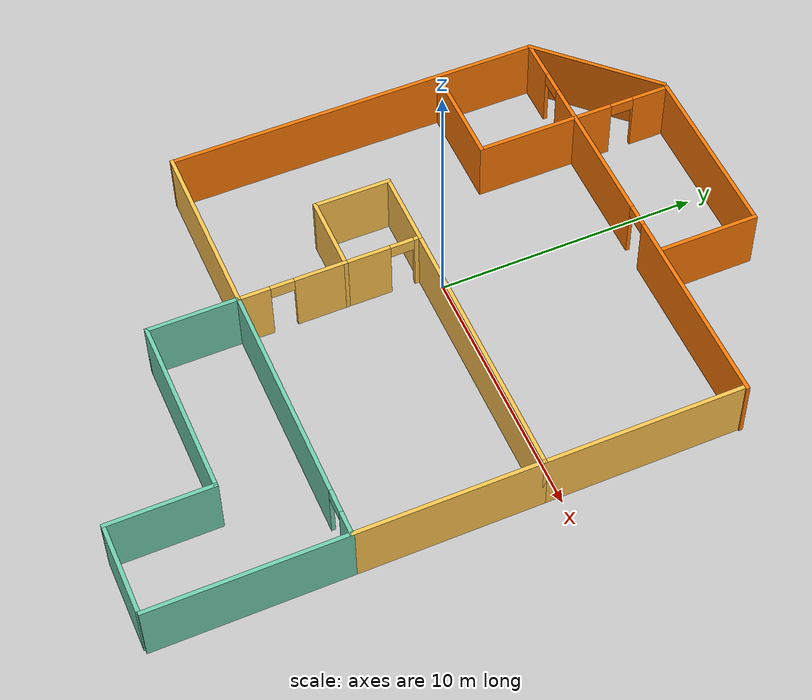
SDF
<?xml version='1.0'?>
<sdf version='1.6'>
  <model name='building'>
    <pose frame=''>1.11947 -1.97796 0 0 -0 0</pose>
    <link name='Wall_0'>
      <collision name='Wall_0_Collision'>
        <geometry>
          <box>
            <size>3 0.15 2.5</size>
          </box>
        </geometry>
        <pose frame=''>0 0 1.25 0 -0 0</pose>
      </collision>
      <visual name='Wall_0_Visual'>
        <pose frame=''>0 0 1.25 0 -0 0</pose>
        <geometry>
          <box>
            <size>3 0.15 2.5</size>
          </box>
        </geometry>
        <material>
          <script>
            <uri>file://media/materials/scripts/gazebo.material</uri>
            <name>Gazebo/Grey</name>
          </script>
          <ambient>1 0.764706 0.305882 1</ambient>
        </material>
        <meta>
          <layer>0</layer>
        </meta>
      </visual>
      <pose frame=''>-3.18447 1.36796 0 0 -0 0</pose>
    </link>
    <link name='Wall_1'>
      <pose frame=''>-1.75947 -0.057044 0 0 0 -1.5708</pose>
      <visual name='Wall_1_Visual_0'>
        <pose frame=''>-1.33969 0 1.25 0 -0 0</pose>
        <geometry>
          <box>
            <size>0.320624 0.15 2.5</size>
          </box>
        </geometry>
        <material>
          <script>
            <uri>file://media/materials/scripts/gazebo.material</uri>
            <name>Gazebo/Grey</name>
          </script>
          <ambient>1 0.764706 0.305882 1</ambient>
        </material>
        <meta>
          <layer>0</layer>
        </meta>
      </visual>
      <collision name='Wall_1_Collision_0'>
        <geometry>
          <box>
            <size>0.320624 0.15 2.5</size>
          </box>
        </geometry>
        <pose frame=''>-1.33969 0 1.25 0 -0 0</pose>
      </collision>
      <visual name='Wall_1_Visual_1'>
        <pose frame=''>0.610312 0 1.25 0 -0 0</pose>
        <geometry>
          <box>
            <size>1.77938 0.15 2.5</size>
          </box>
        </geometry>
        <material>
          <script>
            <uri>file://media/materials/scripts/gazebo.material</uri>
            <name>Gazebo/Grey</name>
          </script>
          <ambient>1 0.764706 0.305882 1</ambient>
        </material>
        <meta>
          <layer>0</layer>
        </meta>
      </visual>
      <collision name='Wall_1_Collision_1'>
        <geometry>
          <box>
            <size>1.77938 0.15 2.5</size>
          </box>
        </geometry>
        <pose frame=''>0.610312 0 1.25 0 -0 0</pose>
      </collision>
      <visual name='Wall_1_Visual_2'>
        <pose frame=''>-0.729376 0 2.25 0 -0 0</pose>
        <geometry>
          <box>
            <size>0.9 0.15 0.5</size>
          </box>
        </geometry>
        <material>
          <script>
            <uri>file://media/materials/scripts/gazebo.material</uri>
            <name>Gazebo/Grey</name>
          </script>
          <ambient>1 0.764706 0.305882 1</ambient>
        </material>
        <meta>
          <layer>0</layer>
        </meta>
      </visual>
      <collision name='Wall_1_Collision_2'>
        <geometry>
          <box>
            <size>0.9 0.15 0.5</size>
          </box>
        </geometry>
        <pose frame=''>-0.729376 0 2.25 0 -0 0</pose>
      </collision>
    </link>
    <link name='Wall_2'>
      <collision name='Wall_2_Collision'>
        <geometry>
          <box>
            <size>3 0.15 2.5</size>
          </box>
        </geometry>
        <pose frame=''>0 0 1.25 0 -0 0</pose>
      </collision>
      <visual name='Wall_2_Visual'>
        <pose frame=''>0 0 1.25 0 -0 0</pose>
        <geometry>
          <box>
            <size>3 0.15 2.5</size>
          </box>
        </geometry>
        <material>
          <script>
            <uri>file://media/materials/scripts/gazebo.material</uri>
            <name>Gazebo/Grey</name>
          </script>
          <ambient>1 0.764706 0.305882 1</ambient>
        </material>
        <meta>
          <layer>0</layer>
        </meta>
      </visual>
      <pose frame=''>-3.18447 -1.48204 0 0 -0 3.14159</pose>
    </link>
    <link name='Wall_3'>
      <collision name='Wall_3_Collision'>
        <geometry>
          <box>
            <size>3 0.15 2.5</size>
          </box>
        </geometry>
        <pose frame=''>0 0 1.25 0 -0 0</pose>
      </collision>
      <visual name='Wall_3_Visual'>
        <pose frame=''>0 0 1.25 0 -0 0</pose>
        <geometry>
          <box>
            <size>3 0.15 2.5</size>
          </box>
        </geometry>
        <material>
          <script>
            <uri>file://media/materials/scripts/gazebo.material</uri>
            <name>Gazebo/Grey</name>
          </script>
          <ambient>1 0.764706 0.305882 1</ambient>
        </material>
        <meta>
          <layer>0</layer>
        </meta>
      </visual>
      <pose frame=''>-4.60947 -0.057044 0 0 -0 1.5708</pose>
    </link>
    <link name='Wall_34'>
      <collision name='Wall_34_Collision'>
        <geometry>
          <box>
            <size>3.5 0.15 2.5</size>
          </box>
        </geometry>
        <pose frame=''>0 0 1.25 0 -0 0</pose>
      </collision>
      <visual name='Wall_34_Visual'>
        <pose frame=''>0 0 1.25 0 -0 0</pose>
        <geometry>
          <box>
            <size>3.5 0.15 2.5</size>
          </box>
        </geometry>
        <material>
          <script>
            <uri>file://media/materials/scripts/gazebo.material</uri>
            <name>Gazebo/Grey</name>
          </script>
          <ambient>0.435294 0.796078 0.67451 1</ambient>
        </material>
        <meta>
          <layer>0</layer>
        </meta>
      </visual>
      <pose frame=''>-1.75947 -7.15704 0 0 0 -1.5708</pose>
    </link>
    <link name='Wall_35'>
      <collision name='Wall_35_Collision'>
        <geometry>
          <box>
            <size>7 0.15 2.5</size>
          </box>
        </geometry>
        <pose frame=''>0 0 1.25 0 -0 0</pose>
      </collision>
      <visual name='Wall_35_Visual'>
        <pose frame=''>0 0 1.25 0 -0 0</pose>
        <geometry>
          <box>
            <size>7 0.15 2.5</size>
          </box>
        </geometry>
        <material>
          <script>
            <uri>file://media/materials/scripts/gazebo.material</uri>
            <name>Gazebo/Grey</name>
          </script>
          <ambient>0.435294 0.796078 0.67451 1</ambient>
        </material>
        <meta>
          <layer>0</layer>
        </meta>
      </visual>
      <pose frame=''>1.66553 -8.83204 0 0 -0 0</pose>
    </link>
    <link name='Wall_36'>
      <collision name='Wall_36_Collision'>
        <geometry>
          <box>
            <size>4 0.15 2.5</size>
          </box>
        </geometry>
        <pose frame=''>0 0 1.25 0 -0 0</pose>
      </collision>
      <visual name='Wall_36_Visual'>
        <pose frame=''>0 0 1.25 0 -0 0</pose>
        <geometry>
          <box>
            <size>4 0.15 2.5</size>
          </box>
        </geometry>
        <material>
          <script>
            <uri>file://media/materials/scripts/gazebo.material</uri>
            <name>Gazebo/Grey</name>
          </script>
          <ambient>0.435294 0.796078 0.67451 1</ambient>
        </material>
        <meta>
          <layer>0</layer>
        </meta>
      </visual>
      <pose frame=''>5.09053 -10.757 0 0 0 -1.5708</pose>
    </link>
    <link name='Wall_37'>
      <collision name='Wall_37_Collision'>
        <geometry>
          <box>
            <size>3.5 0.15 2.5</size>
          </box>
        </geometry>
        <pose frame=''>0 0 1.25 0 -0 0</pose>
      </collision>
      <visual name='Wall_37_Visual'>
        <pose frame=''>0 0 1.25 0 -0 0</pose>
        <geometry>
          <box>
            <size>3.5 0.15 2.5</size>
          </box>
        </geometry>
        <material>
          <script>
            <uri>file://media/materials/scripts/gazebo.material</uri>
            <name>Gazebo/Grey</name>
          </script>
          <ambient>0.435294 0.796078 0.67451 1</ambient>
        </material>
        <meta>
          <layer>0</layer>
        </meta>
      </visual>
      <pose frame=''>6.76553 -12.682 0 0 -0 0</pose>
    </link>
    <link name='Wall_40'>
      <collision name='Wall_40_Collision'>
        <geometry>
          <box>
            <size>7.3 0.15 2.5</size>
          </box>
        </geometry>
        <pose frame=''>0 0 1.25 0 -0 0</pose>
      </collision>
      <visual name='Wall_40_Visual'>
        <pose frame=''>0 0 1.25 0 -0 0</pose>
        <geometry>
          <box>
            <size>7.3 0.15 2.5</size>
          </box>
        </geometry>
        <material>
          <script>
            <uri>file://media/materials/scripts/gazebo.material</uri>
            <name>Gazebo/Grey</name>
          </script>
          <ambient>0.435294 0.796078 0.67451 1</ambient>
        </material>
        <meta>
          <layer>0</layer>
        </meta>
      </visual>
      <pose frame=''>8.59053 -9.05704 0 0 0 -1.5708</pose>
    </link>
    <link name='Wall_42'>
      <collision name='Wall_42_Collision'>
        <geometry>
          <box>
            <size>7 0.15 2.5</size>
          </box>
        </geometry>
        <pose frame=''>0 0 1.25 0 -0 0</pose>
      </collision>
      <visual name='Wall_42_Visual'>
        <pose frame=''>0 0 1.25 0 -0 0</pose>
        <geometry>
          <box>
            <size>7 0.15 2.5</size>
          </box>
        </geometry>
        <material>
          <script>
            <uri>file://media/materials/scripts/gazebo.material</uri>
            <name>Gazebo/Grey</name>
          </script>
          <ambient>1 0.764706 0.305882 1</ambient>
        </material>
        <meta>
          <layer>0</layer>
        </meta>
      </visual>
      <pose frame=''>-5.18447 -5.48204 0 0 -0 3.14159</pose>
    </link>
    <link name='Wall_43'>
      <collision name='Wall_43_Collision'>
        <geometry>
          <box>
            <size>14.5 0.15 2.5</size>
          </box>
        </geometry>
        <pose frame=''>0 0 1.25 0 -0 0</pose>
      </collision>
      <visual name='Wall_43_Visual'>
        <pose frame=''>0 0 1.25 0 -0 0</pose>
        <geometry>
          <box>
            <size>14.5 0.15 2.5</size>
          </box>
        </geometry>
        <material>
          <script>
            <uri>file://media/materials/scripts/gazebo.material</uri>
            <name>Gazebo/Grey</name>
          </script>
          <ambient>0.996078 0.47451 0.0196078 1</ambient>
        </material>
        <meta>
          <layer>0</layer>
        </meta>
      </visual>
      <pose frame=''>-8.60947 1.69296 0 0 -0 1.5708</pose>
    </link>
    <link name='Wall_44'>
      <pose frame=''>0.015533 8.86796 0 0 -0 0</pose>
      <visual name='Wall_44_Visual_0'>
        <pose frame=''>-7.87921 0 1.25 0 -0 0</pose>
        <geometry>
          <box>
            <size>1.64157 0.15 2.5</size>
          </box>
        </geometry>
        <material>
          <script>
            <uri>file://media/materials/scripts/gazebo.material</uri>
            <name>Gazebo/Grey</name>
          </script>
          <ambient>0.996078 0.47451 0.0196078 1</ambient>
        </material>
        <meta>
          <layer>0</layer>
        </meta>
      </visual>
      <collision name='Wall_44_Collision_0'>
        <geometry>
          <box>
            <size>1.64157 0.15 2.5</size>
          </box>
        </geometry>
        <pose frame=''>-7.87921 0 1.25 0 -0 0</pose>
      </collision>
      <visual name='Wall_44_Visual_1'>
        <pose frame=''>-3.07883 0 1.25 0 -0 0</pose>
        <geometry>
          <box>
            <size>6.15918 0.15 2.5</size>
          </box>
        </geometry>
        <material>
          <script>
            <uri>file://media/materials/scripts/gazebo.material</uri>
            <name>Gazebo/Grey</name>
          </script>
          <ambient>0.996078 0.47451 0.0196078 1</ambient>
        </material>
        <meta>
          <layer>0</layer>
        </meta>
      </visual>
      <collision name='Wall_44_Collision_1'>
        <geometry>
          <box>
            <size>6.15918 0.15 2.5</size>
          </box>
        </geometry>
        <pose frame=''>-3.07883 0 1.25 0 -0 0</pose>
      </collision>
      <visual name='Wall_44_Visual_2'>
        <pose frame=''>4.80038 0 1.25 0 -0 0</pose>
        <geometry>
          <box>
            <size>7.79924 0.15 2.5</size>
          </box>
        </geometry>
        <material>
          <script>
            <uri>file://media/materials/scripts/gazebo.material</uri>
            <name>Gazebo/Grey</name>
          </script>
          <ambient>0.996078 0.47451 0.0196078 1</ambient>
        </material>
        <meta>
          <layer>0</layer>
        </meta>
      </visual>
      <collision name='Wall_44_Collision_2'>
        <geometry>
          <box>
            <size>7.79924 0.15 2.5</size>
          </box>
        </geometry>
        <pose frame=''>4.80038 0 1.25 0 -0 0</pose>
      </collision>
      <visual name='Wall_44_Visual_3'>
        <pose frame=''>-6.60843 0 2.25 0 -0 0</pose>
        <geometry>
          <box>
            <size>0.9 0.15 0.5</size>
          </box>
        </geometry>
        <material>
          <script>
            <uri>file://media/materials/scripts/gazebo.material</uri>
            <name>Gazebo/Grey</name>
          </script>
          <ambient>0.996078 0.47451 0.0196078 1</ambient>
        </material>
        <meta>
          <layer>0</layer>
        </meta>
      </visual>
      <collision name='Wall_44_Collision_3'>
        <geometry>
          <box>
            <size>0.9 0.15 0.5</size>
          </box>
        </geometry>
        <pose frame=''>-6.60843 0 2.25 0 -0 0</pose>
      </collision>
      <visual name='Wall_44_Visual_4'>
        <pose frame=''>0.450758 0 2.25 0 -0 0</pose>
        <geometry>
          <box>
            <size>0.9 0.15 0.5</size>
          </box>
        </geometry>
        <material>
          <script>
            <uri>file://media/materials/scripts/gazebo.material</uri>
            <name>Gazebo/Grey</name>
          </script>
          <ambient>0.996078 0.47451 0.0196078 1</ambient>
        </material>
        <meta>
          <layer>0</layer>
        </meta>
      </visual>
      <collision name='Wall_44_Collision_4'>
        <geometry>
          <box>
            <size>0.9 0.15 0.5</size>
          </box>
        </geometry>
        <pose frame=''>0.450758 0 2.25 0 -0 0</pose>
      </collision>
    </link>
    <link name='Wall_46'>
      <collision name='Wall_46_Collision'>
        <geometry>
          <box>
            <size>7.5 0.15 2.5</size>
          </box>
        </geometry>
        <pose frame=''>0 0 1.25 0 -0 0</pose>
      </collision>
      <visual name='Wall_46_Visual'>
        <pose frame=''>0 0 1.25 0 -0 0</pose>
        <geometry>
          <box>
            <size>7.5 0.15 2.5</size>
          </box>
        </geometry>
        <material>
          <script>
            <uri>file://media/materials/scripts/gazebo.material</uri>
            <name>Gazebo/Grey</name>
          </script>
          <ambient>1 0.764706 0.305882 1</ambient>
        </material>
        <meta>
          <layer>0</layer>
        </meta>
      </visual>
      <pose frame=''>8.59053 5.04296 0 0 -0 1.5708</pose>
    </link>
    <link name='Wall_49'>
      <collision name='Wall_49_Collision'>
        <geometry>
          <box>
            <size>4 0.15 2.5</size>
          </box>
        </geometry>
        <pose frame=''>0 0 1.25 0 -0 0</pose>
      </collision>
      <visual name='Wall_49_Visual'>
        <pose frame=''>0 0 1.25 0 -0 0</pose>
        <geometry>
          <box>
            <size>4 0.15 2.5</size>
          </box>
        </geometry>
        <material>
          <script>
            <uri>file://media/materials/scripts/gazebo.material</uri>
            <name>Gazebo/Grey</name>
          </script>
          <ambient>0.996078 0.47451 0.0196078 1</ambient>
        </material>
        <meta>
          <layer>0</layer>
        </meta>
      </visual>
      <pose frame=''>-6.5776 5.06626 0 0 -0 0</pose>
    </link>
    <link name='Wall_5'>
      <collision name='Wall_5_Collision'>
        <geometry>
          <box>
            <size>10.5 0.15 2.5</size>
          </box>
        </geometry>
        <pose frame=''>0 0 1.25 0 -0 0</pose>
      </collision>
      <visual name='Wall_5_Visual'>
        <pose frame=''>0 0 1.25 0 -0 0</pose>
        <geometry>
          <box>
            <size>10.5 0.15 2.5</size>
          </box>
        </geometry>
        <material>
          <script>
            <uri>file://media/materials/scripts/gazebo.material</uri>
            <name>Gazebo/Grey</name>
          </script>
          <ambient>1 0.764706 0.305882 1</ambient>
        </material>
        <meta>
          <layer>0</layer>
        </meta>
      </visual>
      <pose frame=''>3.41553 1.36796 0 0 -0 0</pose>
    </link>
    <link name='Wall_50'>
      <pose frame=''>-4.6526 8.86626 0 0 -0 1.5708</pose>
      <visual name='Wall_50_Visual_0'>
        <pose frame=''>-1.2023 0 1.25 0 -0 0</pose>
        <geometry>
          <box>
            <size>5.34539 0.15 2.5</size>
          </box>
        </geometry>
        <material>
          <script>
            <uri>file://media/materials/scripts/gazebo.material</uri>
            <name>Gazebo/Grey</name>
          </script>
          <ambient>0.996078 0.47451 0.0196078 1</ambient>
        </material>
        <meta>
          <layer>0</layer>
        </meta>
      </visual>
      <collision name='Wall_50_Collision_0'>
        <geometry>
          <box>
            <size>5.34539 0.15 2.5</size>
          </box>
        </geometry>
        <pose frame=''>-1.2023 0 1.25 0 -0 0</pose>
      </collision>
      <visual name='Wall_50_Visual_1'>
        <pose frame=''>3.1227 0 1.25 0 -0 0</pose>
        <geometry>
          <box>
            <size>1.50461 0.15 2.5</size>
          </box>
        </geometry>
        <material>
          <script>
            <uri>file://media/materials/scripts/gazebo.material</uri>
            <name>Gazebo/Grey</name>
          </script>
          <ambient>0.996078 0.47451 0.0196078 1</ambient>
        </material>
        <meta>
          <layer>0</layer>
        </meta>
      </visual>
      <collision name='Wall_50_Collision_1'>
        <geometry>
          <box>
            <size>1.50461 0.15 2.5</size>
          </box>
        </geometry>
        <pose frame=''>3.1227 0 1.25 0 -0 0</pose>
      </collision>
      <visual name='Wall_50_Visual_2'>
        <pose frame=''>1.92039 0 2.25 0 -0 0</pose>
        <geometry>
          <box>
            <size>0.9 0.15 0.5</size>
          </box>
        </geometry>
        <material>
          <script>
            <uri>file://media/materials/scripts/gazebo.material</uri>
            <name>Gazebo/Grey</name>
          </script>
          <ambient>0.996078 0.47451 0.0196078 1</ambient>
        </material>
        <meta>
          <layer>0</layer>
        </meta>
      </visual>
      <collision name='Wall_50_Collision_2'>
        <geometry>
          <box>
            <size>0.9 0.15 0.5</size>
          </box>
        </geometry>
        <pose frame=''>1.92039 0 2.25 0 -0 0</pose>
      </collision>
    </link>
    <link name='Wall_54'>
      <collision name='Wall_54_Collision'>
        <geometry>
          <box>
            <size>7 0.15 2.5</size>
          </box>
        </geometry>
        <pose frame=''>0 0 1.25 0 -0 0</pose>
      </collision>
      <visual name='Wall_54_Visual'>
        <pose frame=''>0 0 1.25 0 -0 0</pose>
        <geometry>
          <box>
            <size>7 0.15 2.5</size>
          </box>
        </geometry>
        <material>
          <script>
            <uri>file://media/materials/scripts/gazebo.material</uri>
            <name>Gazebo/Grey</name>
          </script>
          <ambient>0.996078 0.47451 0.0196078 1</ambient>
        </material>
        <meta>
          <layer>0</layer>
        </meta>
      </visual>
      <pose frame=''>-1.2276 12.6663 0 0 -0 0</pose>
    </link>
    <link name='Wall_55'>
      <collision name='Wall_55_Collision'>
        <geometry>
          <box>
            <size>3.8 0.15 2.5</size>
          </box>
        </geometry>
        <pose frame=''>0 0 1.25 0 -0 0</pose>
      </collision>
      <visual name='Wall_55_Visual'>
        <pose frame=''>0 0 1.25 0 -0 0</pose>
        <geometry>
          <box>
            <size>3.8 0.15 2.5</size>
          </box>
        </geometry>
        <material>
          <script>
            <uri>file://media/materials/scripts/gazebo.material</uri>
            <name>Gazebo/Grey</name>
          </script>
          <ambient>0.996078 0.47451 0.0196078 1</ambient>
        </material>
        <meta>
          <layer>0</layer>
        </meta>
      </visual>
      <pose frame=''>2.1974 10.8413 0 0 0 -1.5708</pose>
    </link>
    <link name='Wall_57'>
      <collision name='Wall_57_Collision'>
        <geometry>
          <box>
            <size>5.5 0.15 2.5</size>
          </box>
        </geometry>
        <pose frame=''>0 0 1.25 0 -0 0</pose>
      </collision>
      <visual name='Wall_57_Visual'>
        <pose frame=''>0 0 1.25 0 -0 0</pose>
        <geometry>
          <box>
            <size>5.5 0.15 2.5</size>
          </box>
        </geometry>
        <material>
          <script>
            <uri>file://media/materials/scripts/gazebo.material</uri>
            <name>Gazebo/Grey</name>
          </script>
          <ambient>0.996078 0.47451 0.0196078 1</ambient>
        </material>
        <meta>
          <layer>0</layer>
        </meta>
      </visual>
      <pose frame=''>-6.71796 10.7595 0 0 -0 0.785398</pose>
    </link>
    <link name='Wall_6'>
      <collision name='Wall_6_Collision'>
        <geometry>
          <box>
            <size>7 0.15 2.5</size>
          </box>
        </geometry>
        <pose frame=''>0 0 1.25 0 -0 0</pose>
      </collision>
      <visual name='Wall_6_Visual'>
        <pose frame=''>0 0 1.25 0 -0 0</pose>
        <geometry>
          <box>
            <size>7 0.15 2.5</size>
          </box>
        </geometry>
        <material>
          <script>
            <uri>file://media/materials/scripts/gazebo.material</uri>
            <name>Gazebo/Grey</name>
          </script>
          <ambient>1 0.764706 0.305882 1</ambient>
        </material>
        <meta>
          <layer>0</layer>
        </meta>
      </visual>
      <pose frame=''>8.59053 -2.05704 0 0 0 -1.5708</pose>
    </link>
    <link name='Wall_7'>
      <pose frame=''>3.41553 -5.48204 0 0 -0 3.14159</pose>
      <visual name='Wall_7_Visual_0'>
        <pose frame=''>-4.75859 0 1.25 0 -0 0</pose>
        <geometry>
          <box>
            <size>0.98283 0.15 2.5</size>
          </box>
        </geometry>
        <material>
          <script>
            <uri>file://media/materials/scripts/gazebo.material</uri>
            <name>Gazebo/Grey</name>
          </script>
          <ambient>0.435294 0.796078 0.67451 1</ambient>
        </material>
        <meta>
          <layer>0</layer>
        </meta>
      </visual>
      <collision name='Wall_7_Collision_0'>
        <geometry>
          <box>
            <size>0.98283 0.15 2.5</size>
          </box>
        </geometry>
        <pose frame=''>-4.75859 0 1.25 0 -0 0</pose>
      </collision>
      <visual name='Wall_7_Visual_1'>
        <pose frame=''>0.941415 0 1.25 0 -0 0</pose>
        <geometry>
          <box>
            <size>8.61717 0.15 2.5</size>
          </box>
        </geometry>
        <material>
          <script>
            <uri>file://media/materials/scripts/gazebo.material</uri>
            <name>Gazebo/Grey</name>
          </script>
          <ambient>0.435294 0.796078 0.67451 1</ambient>
        </material>
        <meta>
          <layer>0</layer>
        </meta>
      </visual>
      <collision name='Wall_7_Collision_1'>
        <geometry>
          <box>
            <size>8.61717 0.15 2.5</size>
          </box>
        </geometry>
        <pose frame=''>0.941415 0 1.25 0 -0 0</pose>
      </collision>
      <visual name='Wall_7_Visual_2'>
        <pose frame=''>-3.81717 0 2.25 0 -0 0</pose>
        <geometry>
          <box>
            <size>0.9 0.15 0.5</size>
          </box>
        </geometry>
        <material>
          <script>
            <uri>file://media/materials/scripts/gazebo.material</uri>
            <name>Gazebo/Grey</name>
          </script>
          <ambient>0.435294 0.796078 0.67451 1</ambient>
        </material>
        <meta>
          <layer>0</layer>
        </meta>
      </visual>
      <collision name='Wall_7_Collision_2'>
        <geometry>
          <box>
            <size>0.9 0.15 0.5</size>
          </box>
        </geometry>
        <pose frame=''>-3.81717 0 2.25 0 -0 0</pose>
      </collision>
    </link>
    <link name='Wall_8'>
      <pose frame=''>-1.75947 -3.48204 0 0 -0 1.5708</pose>
      <visual name='Wall_8_Visual_0'>
        <pose frame=''>-1.45151 0 1.25 0 -0 0</pose>
        <geometry>
          <box>
            <size>1.24699 0.15 2.5</size>
          </box>
        </geometry>
        <material>
          <script>
            <uri>file://media/materials/scripts/gazebo.material</uri>
            <name>Gazebo/Grey</name>
          </script>
          <ambient>1 0.764706 0.305882 1</ambient>
        </material>
        <meta>
          <layer>0</layer>
        </meta>
      </visual>
      <collision name='Wall_8_Collision_0'>
        <geometry>
          <box>
            <size>1.24699 0.15 2.5</size>
          </box>
        </geometry>
        <pose frame=''>-1.45151 0 1.25 0 -0 0</pose>
      </collision>
      <visual name='Wall_8_Visual_1'>
        <pose frame=''>1.07349 0 1.25 0 -0 0</pose>
        <geometry>
          <box>
            <size>2.00301 0.15 2.5</size>
          </box>
        </geometry>
        <material>
          <script>
            <uri>file://media/materials/scripts/gazebo.material</uri>
            <name>Gazebo/Grey</name>
          </script>
          <ambient>1 0.764706 0.305882 1</ambient>
        </material>
        <meta>
          <layer>0</layer>
        </meta>
      </visual>
      <collision name='Wall_8_Collision_1'>
        <geometry>
          <box>
            <size>2.00301 0.15 2.5</size>
          </box>
        </geometry>
        <pose frame=''>1.07349 0 1.25 0 -0 0</pose>
      </collision>
      <visual name='Wall_8_Visual_2'>
        <pose frame=''>-0.378014 0 2.25 0 -0 0</pose>
        <geometry>
          <box>
            <size>0.9 0.15 0.5</size>
          </box>
        </geometry>
        <material>
          <script>
            <uri>file://media/materials/scripts/gazebo.material</uri>
            <name>Gazebo/Grey</name>
          </script>
          <ambient>1 0.764706 0.305882 1</ambient>
        </material>
        <meta>
          <layer>0</layer>
        </meta>
      </visual>
      <collision name='Wall_8_Collision_2'>
        <geometry>
          <box>
            <size>0.9 0.15 0.5</size>
          </box>
        </geometry>
        <pose frame=''>-0.378014 0 2.25 0 -0 0</pose>
      </collision>
    </link>
    <static>1</static>
  </model>
</sdf>
